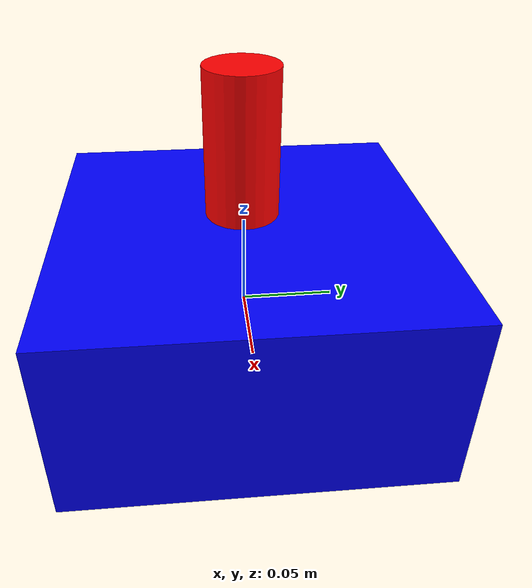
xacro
<?xml version="1.0"?>
<robot name="car" xmlns:xacro="http://www.ros.org/wiki/xacro">

  <!-- Base Footprint Link -->

  <!-- Base Link -->
  <link name="base_link">
    <visual>
      <geometry>
        <box size="0.2 0.2 0.1"/>
      </geometry>
      <material name="blue">
        <color rgba="0 0 1 1"/>
      </material>
    </visual>
  </link>

  <joint name="base_footprint_joint" type="fixed">
        <parent link="base_link"/>
        <child link="base_footprint"/>
        <origin xyz="0 0 0" rpy="0 0 0"/>
    </joint>

    <link name="base_footprint">
    </link>

  <!-- Joint connecting Base Link to Base Footprint -->

  <!-- Laser Link for LiDAR -->
  <link name="laser_link">
    <visual>
      <geometry>
        <cylinder length="0.1" radius="0.02"/>
      </geometry>
      <material name="red">
        <color rgba="1 0 0 1"/>
      </material>
    </visual>
  </link>

  <!-- Joint connecting Laser Link to Base Link -->
  <joint name="laser_joint" type="fixed">
    <parent link="base_link"/>
    <child link="laser_link"/>
    <origin xyz="-0.01 0 0.08" rpy="0 0 0"/>
  </joint>

</robot>
